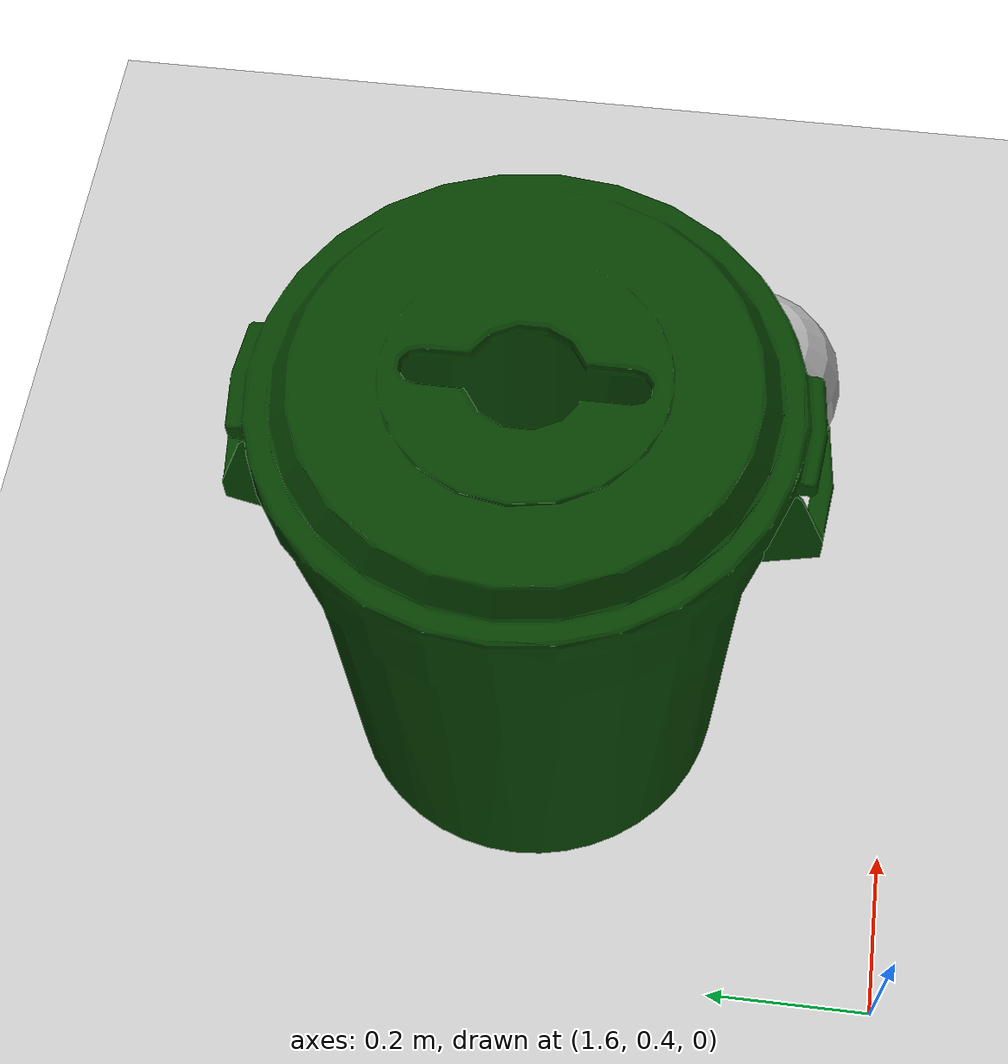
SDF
<sdf version="1.7">
 <world name="default">
  <light name="sun" type="directional">
   <pose>0 0 10 0 -0 0</pose>
   <diffuse>0.8 0.8 0.8 1</diffuse>
   <specular>0.2 0.2 0.2 1</specular>
   <attenuation>
    <range>1000</range>
    <constant>0.9</constant>
    <linear>0.01</linear>
    <quadratic>0.001</quadratic>
   </attenuation>
   <direction>-0.5 0.1 -0.9</direction>
   <spot><inner_angle>0</inner_angle><outer_angle>0</outer_angle><falloff>0</falloff></spot>
  </light>
  <model name="ground_plane">
   <static>1</static>
   <link name="link">
    <collision name="collision">
     <geometry><plane><normal>0 0 1</normal><size>100 100</size></plane></geometry>
     <surface>
      <contact><collide_bitmask>65535</collide_bitmask></contact>
      <friction><ode><mu>100</mu><mu2>50</mu2></ode></friction>
     </surface>
    </collision>
    <visual name="visual">
     <cast_shadows>0</cast_shadows>
     <geometry><plane><normal>0 0 1</normal><size>100 100</size></plane></geometry>
     <material>
      <script><uri>file://media/materials/scripts/gazebo.material</uri><name>Gazebo/Grey</name></script>
     </material>
    </visual>
   </link>
  </model>
  <gravity>0 0 -9.8</gravity>
  <magnetic_field>6e-06 2.3e-05 -4.2e-05</magnetic_field>
  <atmosphere type="adiabatic"/>
  <physics type="ode">
   <max_step_size>0.001</max_step_size>
   <real_time_factor>1</real_time_factor>
   <real_time_update_rate>1000</real_time_update_rate>
  </physics>
  <scene><ambient>0.4 0.4 0.4 1</ambient><background>0.7 0.7 0.7 1</background><shadows>1</shadows></scene>
  <audio><device>default</device></audio>
  <spherical_coordinates>
   <surface_model>EARTH_WGS84</surface_model>
   <latitude_deg>0</latitude_deg>
   <longitude_deg>0</longitude_deg>
   <elevation>0</elevation>
   <heading_deg>0</heading_deg>
  </spherical_coordinates>
  <model name="Untitled">
   <model name="first_2015_trash_can">
    <link name="link">
     <inertial>
      <pose>0 0 0.3683 0 -0 0</pose>
      <mass>4.83076</mass>
      <inertia>
       <ixx>0.281534</ixx>
       <ixy>0</ixy>
       <ixz>0</ixz>
       <iyy>0.281534</iyy>
       <iyz>0</iyz>
       <izz>0.126223</izz>
      </inertia>
     </inertial>
     <visual name="visual">
      <geometry><mesh><uri>model://first_2015_trash_can/meshes/trash_can.dae</uri></mesh></geometry>
     </visual>
     <collision name="collision">
      <geometry><mesh><uri>model://first_2015_trash_can/meshes/trash_can.dae</uri></mesh></geometry>
     </collision>
    </link>
    <pose>-0.214669 0.115249 -0.0635 0 -0 0</pose>
   </model>
   <model name="frc2016_ball">
    <pose>0.21467 -0.115249 0.0635 0 -0 0</pose>
    <link name="link">
     <inertial>
      <mass>0.213</mass>
      <inertia>
       <ixx>0.00322667</ixx>
       <ixy>0</ixy>
       <ixz>0</ixz>
       <iyy>0.00322667</iyy>
       <iyz>0</iyz>
       <izz>0.00322667</izz>
      </inertia>
     </inertial>
     <visual name="visual"><geometry><sphere><radius>0.127</radius></sphere></geometry></visual>
     <collision name="collision">
      <geometry><sphere><radius>0.127</radius></sphere></geometry>
      <surface>
       <bounce><restitution_coefficient>0.15937</restitution_coefficient><threshold>0</threshold></bounce>
       <contact><ode><max_vel>100</max_vel><min_depth>0.001</min_depth></ode></contact>
      </surface>
     </collision>
    </link>
   </model>
   <static>0</static>
   <pose>2.19284 0.738432 0.0635 0 -0 0</pose>
  </model>
 </world>
</sdf>
